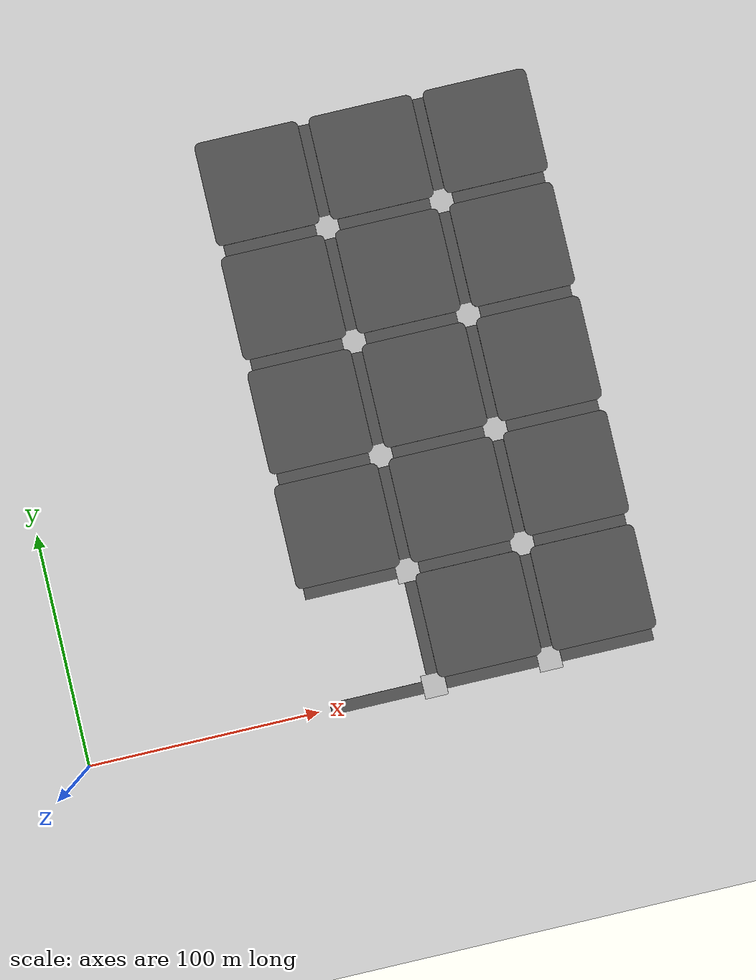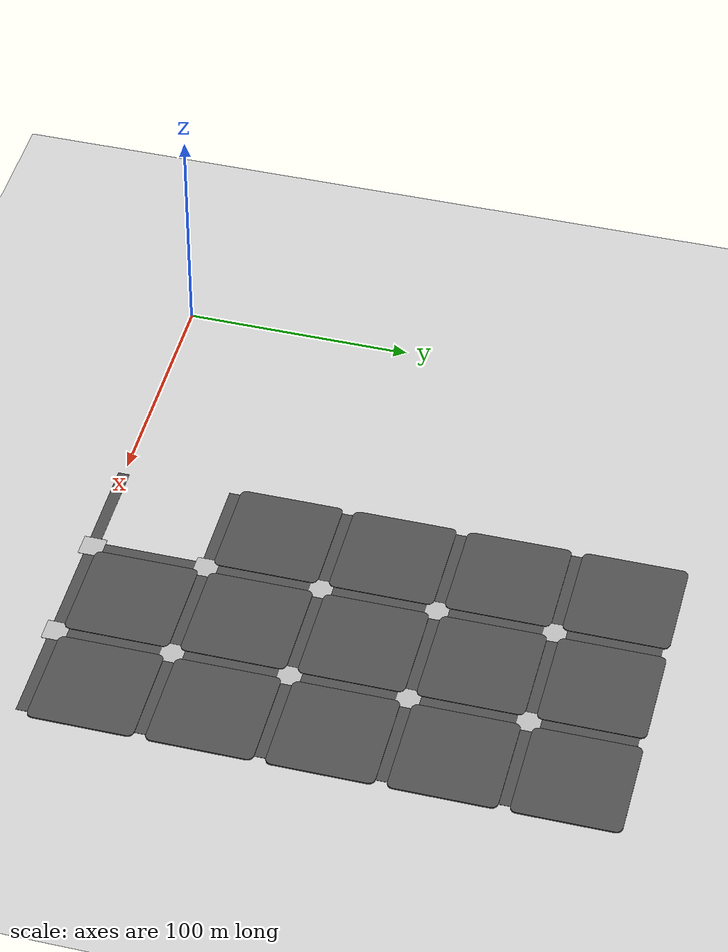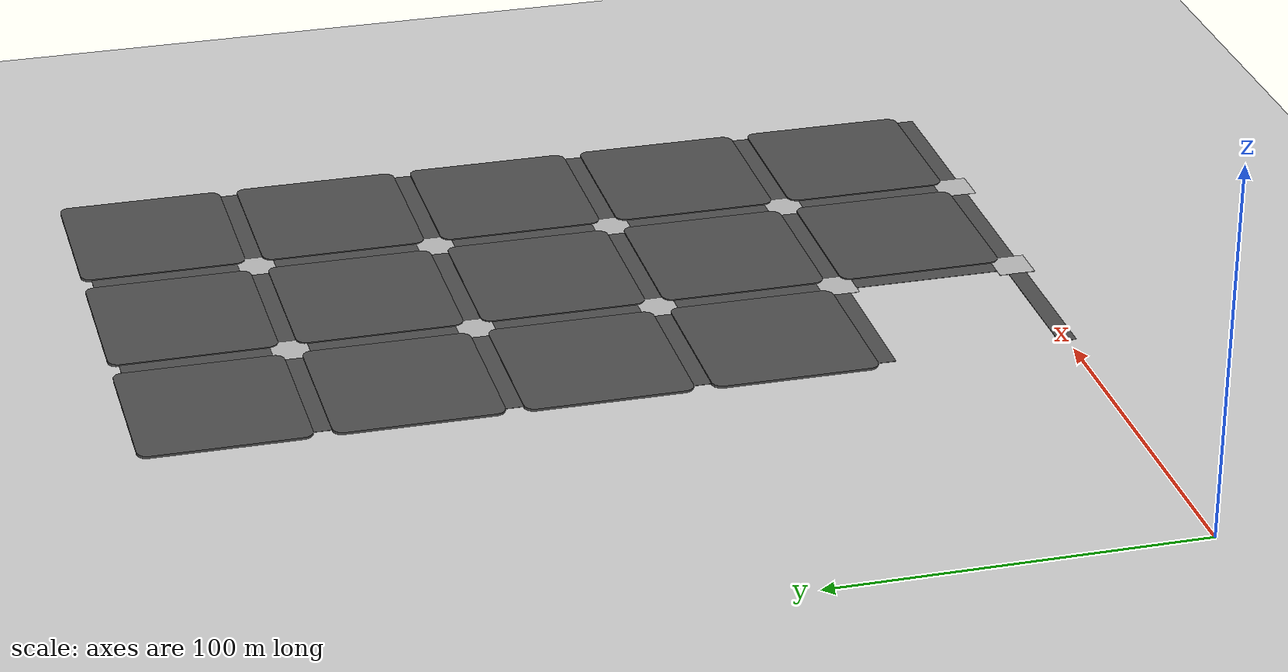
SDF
<sdf version="1.5">
 <world name="default">
  <model name="ground_plane">
   <static>1</static>
   <link name="link">
    <collision name="collision">
     <geometry><plane><normal>0 0 1</normal><size>10000 10000</size></plane></geometry>
     <surface>
      <contact><collide_bitmask>65535</collide_bitmask></contact>
      <friction><ode><mu>100</mu><mu2>50</mu2></ode></friction>
     </surface>
    </collision>
    <visual name="visual">
     <cast_shadows>0</cast_shadows>
     <geometry><plane><normal>0 0 1</normal><size>10000 10000</size></plane></geometry>
     <material>
      <script><uri>file://media/materials/scripts/gazebo.material</uri><name>Gazebo/Grey</name></script>
     </material>
    </visual>
   </link>
  </model>
  <model name="asphalt_plane_3_0">
   <pose>175 25 0 0 -0 0</pose>
   <static>1</static>
   <link name="link">
    <collision name="collision">
     <geometry>
      <mesh>
       <uri>/Users/selfcar/Desktop/Self-Driving-Comps/models/asphalt_plane/blockbevel.dae</uri>
       <scale>0.565 0.565 1</scale>
      </mesh>
     </geometry>
    </collision>
    <visual name="visual">
     <cast_shadows>0</cast_shadows>
     <geometry>
      <mesh>
       <uri>/Users/selfcar/Desktop/Self-Driving-Comps/models/asphalt_plane/blockbevel.dae</uri>
       <scale>0.565 0.565 1</scale>
      </mesh>
     </geometry>
     <material>
      <script>
       <uri>models/asphalt_plane/materials/scripts</uri>
       <uri>models/asphalt_plane/materials/textures</uri>
       <name>vrc/asphalt</name>
      </script>
     </material>
    </visual>
   </link>
  </model>
  <model name="asphalt_plane_4_0">
   <pose>225 25 0 0 -0 0</pose>
   <static>1</static>
   <link name="link">
    <collision name="collision">
     <geometry>
      <mesh>
       <uri>/Users/selfcar/Desktop/Self-Driving-Comps/models/asphalt_plane/blockbevel.dae</uri>
       <scale>0.565 0.565 1</scale>
      </mesh>
     </geometry>
    </collision>
    <visual name="visual">
     <cast_shadows>0</cast_shadows>
     <geometry>
      <mesh>
       <uri>/Users/selfcar/Desktop/Self-Driving-Comps/models/asphalt_plane/blockbevel.dae</uri>
       <scale>0.565 0.565 1</scale>
      </mesh>
     </geometry>
     <material>
      <script>
       <uri>models/asphalt_plane/materials/scripts</uri>
       <uri>models/asphalt_plane/materials/textures</uri>
       <name>vrc/asphalt</name>
      </script>
     </material>
    </visual>
   </link>
  </model>
  <model name="asphalt_plane_2_1">
   <pose>125 75 0 0 -0 0</pose>
   <static>1</static>
   <link name="link">
    <collision name="collision">
     <geometry>
      <mesh>
       <uri>/Users/selfcar/Desktop/Self-Driving-Comps/models/asphalt_plane/blockbevel.dae</uri>
       <scale>0.565 0.565 1</scale>
      </mesh>
     </geometry>
    </collision>
    <visual name="visual">
     <cast_shadows>0</cast_shadows>
     <geometry>
      <mesh>
       <uri>/Users/selfcar/Desktop/Self-Driving-Comps/models/asphalt_plane/blockbevel.dae</uri>
       <scale>0.565 0.565 1</scale>
      </mesh>
     </geometry>
     <material>
      <script>
       <uri>models/asphalt_plane/materials/scripts</uri>
       <uri>models/asphalt_plane/materials/textures</uri>
       <name>vrc/asphalt</name>
      </script>
     </material>
    </visual>
   </link>
  </model>
  <model name="asphalt_plane_3_1">
   <pose>175 75 0 0 -0 0</pose>
   <static>1</static>
   <link name="link">
    <collision name="collision">
     <geometry>
      <mesh>
       <uri>/Users/selfcar/Desktop/Self-Driving-Comps/models/asphalt_plane/blockbevel.dae</uri>
       <scale>0.565 0.565 1</scale>
      </mesh>
     </geometry>
    </collision>
    <visual name="visual">
     <cast_shadows>0</cast_shadows>
     <geometry>
      <mesh>
       <uri>/Users/selfcar/Desktop/Self-Driving-Comps/models/asphalt_plane/blockbevel.dae</uri>
       <scale>0.565 0.565 1</scale>
      </mesh>
     </geometry>
     <material>
      <script>
       <uri>models/asphalt_plane/materials/scripts</uri>
       <uri>models/asphalt_plane/materials/textures</uri>
       <name>vrc/asphalt</name>
      </script>
     </material>
    </visual>
   </link>
  </model>
  <model name="asphalt_plane_4_1">
   <pose>225 75 0 0 -0 0</pose>
   <static>1</static>
   <link name="link">
    <collision name="collision">
     <geometry>
      <mesh>
       <uri>/Users/selfcar/Desktop/Self-Driving-Comps/models/asphalt_plane/blockbevel.dae</uri>
       <scale>0.565 0.565 1</scale>
      </mesh>
     </geometry>
    </collision>
    <visual name="visual">
     <cast_shadows>0</cast_shadows>
     <geometry>
      <mesh>
       <uri>/Users/selfcar/Desktop/Self-Driving-Comps/models/asphalt_plane/blockbevel.dae</uri>
       <scale>0.565 0.565 1</scale>
      </mesh>
     </geometry>
     <material>
      <script>
       <uri>models/asphalt_plane/materials/scripts</uri>
       <uri>models/asphalt_plane/materials/textures</uri>
       <name>vrc/asphalt</name>
      </script>
     </material>
    </visual>
   </link>
  </model>
  <model name="asphalt_plane_2_2">
   <pose>125 125 0 0 -0 0</pose>
   <static>1</static>
   <link name="link">
    <collision name="collision">
     <geometry>
      <mesh>
       <uri>/Users/selfcar/Desktop/Self-Driving-Comps/models/asphalt_plane/blockbevel.dae</uri>
       <scale>0.565 0.565 1</scale>
      </mesh>
     </geometry>
    </collision>
    <visual name="visual">
     <cast_shadows>0</cast_shadows>
     <geometry>
      <mesh>
       <uri>/Users/selfcar/Desktop/Self-Driving-Comps/models/asphalt_plane/blockbevel.dae</uri>
       <scale>0.565 0.565 1</scale>
      </mesh>
     </geometry>
     <material>
      <script>
       <uri>models/asphalt_plane/materials/scripts</uri>
       <uri>models/asphalt_plane/materials/textures</uri>
       <name>vrc/asphalt</name>
      </script>
     </material>
    </visual>
   </link>
  </model>
  <model name="asphalt_plane_3_2">
   <pose>175 125 0 0 -0 0</pose>
   <static>1</static>
   <link name="link">
    <collision name="collision">
     <geometry>
      <mesh>
       <uri>/Users/selfcar/Desktop/Self-Driving-Comps/models/asphalt_plane/blockbevel.dae</uri>
       <scale>0.565 0.565 1</scale>
      </mesh>
     </geometry>
    </collision>
    <visual name="visual">
     <cast_shadows>0</cast_shadows>
     <geometry>
      <mesh>
       <uri>/Users/selfcar/Desktop/Self-Driving-Comps/models/asphalt_plane/blockbevel.dae</uri>
       <scale>0.565 0.565 1</scale>
      </mesh>
     </geometry>
     <material>
      <script>
       <uri>models/asphalt_plane/materials/scripts</uri>
       <uri>models/asphalt_plane/materials/textures</uri>
       <name>vrc/asphalt</name>
      </script>
     </material>
    </visual>
   </link>
  </model>
  <model name="asphalt_plane_4_2">
   <pose>225 125 0 0 -0 0</pose>
   <static>1</static>
   <link name="link">
    <collision name="collision">
     <geometry>
      <mesh>
       <uri>/Users/selfcar/Desktop/Self-Driving-Comps/models/asphalt_plane/blockbevel.dae</uri>
       <scale>0.565 0.565 1</scale>
      </mesh>
     </geometry>
    </collision>
    <visual name="visual">
     <cast_shadows>0</cast_shadows>
     <geometry>
      <mesh>
       <uri>/Users/selfcar/Desktop/Self-Driving-Comps/models/asphalt_plane/blockbevel.dae</uri>
       <scale>0.565 0.565 1</scale>
      </mesh>
     </geometry>
     <material>
      <script>
       <uri>models/asphalt_plane/materials/scripts</uri>
       <uri>models/asphalt_plane/materials/textures</uri>
       <name>vrc/asphalt</name>
      </script>
     </material>
    </visual>
   </link>
  </model>
  <model name="asphalt_plane_2_3">
   <pose>125 175 0 0 -0 0</pose>
   <static>1</static>
   <link name="link">
    <collision name="collision">
     <geometry>
      <mesh>
       <uri>/Users/selfcar/Desktop/Self-Driving-Comps/models/asphalt_plane/blockbevel.dae</uri>
       <scale>0.565 0.565 1</scale>
      </mesh>
     </geometry>
    </collision>
    <visual name="visual">
     <cast_shadows>0</cast_shadows>
     <geometry>
      <mesh>
       <uri>/Users/selfcar/Desktop/Self-Driving-Comps/models/asphalt_plane/blockbevel.dae</uri>
       <scale>0.565 0.565 1</scale>
      </mesh>
     </geometry>
     <material>
      <script>
       <uri>models/asphalt_plane/materials/scripts</uri>
       <uri>models/asphalt_plane/materials/textures</uri>
       <name>vrc/asphalt</name>
      </script>
     </material>
    </visual>
   </link>
  </model>
  <model name="asphalt_plane_3_3">
   <pose>175 175 0 0 -0 0</pose>
   <static>1</static>
   <link name="link">
    <collision name="collision">
     <geometry>
      <mesh>
       <uri>/Users/selfcar/Desktop/Self-Driving-Comps/models/asphalt_plane/blockbevel.dae</uri>
       <scale>0.565 0.565 1</scale>
      </mesh>
     </geometry>
    </collision>
    <visual name="visual">
     <cast_shadows>0</cast_shadows>
     <geometry>
      <mesh>
       <uri>/Users/selfcar/Desktop/Self-Driving-Comps/models/asphalt_plane/blockbevel.dae</uri>
       <scale>0.565 0.565 1</scale>
      </mesh>
     </geometry>
     <material>
      <script>
       <uri>models/asphalt_plane/materials/scripts</uri>
       <uri>models/asphalt_plane/materials/textures</uri>
       <name>vrc/asphalt</name>
      </script>
     </material>
    </visual>
   </link>
  </model>
  <model name="asphalt_plane_4_3">
   <pose>225 175 0 0 -0 0</pose>
   <static>1</static>
   <link name="link">
    <collision name="collision">
     <geometry>
      <mesh>
       <uri>/Users/selfcar/Desktop/Self-Driving-Comps/models/asphalt_plane/blockbevel.dae</uri>
       <scale>0.565 0.565 1</scale>
      </mesh>
     </geometry>
    </collision>
    <visual name="visual">
     <cast_shadows>0</cast_shadows>
     <geometry>
      <mesh>
       <uri>/Users/selfcar/Desktop/Self-Driving-Comps/models/asphalt_plane/blockbevel.dae</uri>
       <scale>0.565 0.565 1</scale>
      </mesh>
     </geometry>
     <material>
      <script>
       <uri>models/asphalt_plane/materials/scripts</uri>
       <uri>models/asphalt_plane/materials/textures</uri>
       <name>vrc/asphalt</name>
      </script>
     </material>
    </visual>
   </link>
  </model>
  <model name="asphalt_plane_2_4">
   <pose>125 225 0 0 -0 0</pose>
   <static>1</static>
   <link name="link">
    <collision name="collision">
     <geometry>
      <mesh>
       <uri>/Users/selfcar/Desktop/Self-Driving-Comps/models/asphalt_plane/blockbevel.dae</uri>
       <scale>0.565 0.565 1</scale>
      </mesh>
     </geometry>
    </collision>
    <visual name="visual">
     <cast_shadows>0</cast_shadows>
     <geometry>
      <mesh>
       <uri>/Users/selfcar/Desktop/Self-Driving-Comps/models/asphalt_plane/blockbevel.dae</uri>
       <scale>0.565 0.565 1</scale>
      </mesh>
     </geometry>
     <material>
      <script>
       <uri>models/asphalt_plane/materials/scripts</uri>
       <uri>models/asphalt_plane/materials/textures</uri>
       <name>vrc/asphalt</name>
      </script>
     </material>
    </visual>
   </link>
  </model>
  <model name="asphalt_plane_3_4">
   <pose>175 225 0 0 -0 0</pose>
   <static>1</static>
   <link name="link">
    <collision name="collision">
     <geometry>
      <mesh>
       <uri>/Users/selfcar/Desktop/Self-Driving-Comps/models/asphalt_plane/blockbevel.dae</uri>
       <scale>0.565 0.565 1</scale>
      </mesh>
     </geometry>
    </collision>
    <visual name="visual">
     <cast_shadows>0</cast_shadows>
     <geometry>
      <mesh>
       <uri>/Users/selfcar/Desktop/Self-Driving-Comps/models/asphalt_plane/blockbevel.dae</uri>
       <scale>0.565 0.565 1</scale>
      </mesh>
     </geometry>
     <material>
      <script>
       <uri>models/asphalt_plane/materials/scripts</uri>
       <uri>models/asphalt_plane/materials/textures</uri>
       <name>vrc/asphalt</name>
      </script>
     </material>
    </visual>
   </link>
  </model>
  <model name="asphalt_plane_4_4">
   <pose>225 225 0 0 -0 0</pose>
   <static>1</static>
   <link name="link">
    <collision name="collision">
     <geometry>
      <mesh>
       <uri>/Users/selfcar/Desktop/Self-Driving-Comps/models/asphalt_plane/blockbevel.dae</uri>
       <scale>0.565 0.565 1</scale>
      </mesh>
     </geometry>
    </collision>
    <visual name="visual">
     <cast_shadows>0</cast_shadows>
     <geometry>
      <mesh>
       <uri>/Users/selfcar/Desktop/Self-Driving-Comps/models/asphalt_plane/blockbevel.dae</uri>
       <scale>0.565 0.565 1</scale>
      </mesh>
     </geometry>
     <material>
      <script>
       <uri>models/asphalt_plane/materials/scripts</uri>
       <uri>models/asphalt_plane/materials/textures</uri>
       <name>vrc/asphalt</name>
      </script>
     </material>
    </visual>
   </link>
  </model>
  <model name="road_2_2_0">
   <pose>125 0 0 0 -0 0</pose>
   <static>1</static>
   <link name="link">
    <collision name="collision"><geometry><box><size>40 5 0.1</size></box></geometry></collision>
    <visual name="visual">
     <cast_shadows>0</cast_shadows>
     <geometry><box><size>40 5 0.1</size></box></geometry>
     <material>
      <script>
       <uri>model://comps_road/materials/scripts</uri>
       <uri>model://comps_road/materials/textures</uri>
       <name>comps_road</name>
      </script>
     </material>
    </visual>
   </link>
  </model>
  <model name="road_1_3_0">
   <pose>150 25 0 0 -0 1.5707</pose>
   <static>1</static>
   <link name="link">
    <collision name="collision"><geometry><box><size>40 5 0.1</size></box></geometry></collision>
    <visual name="visual">
     <cast_shadows>0</cast_shadows>
     <geometry><box><size>40 5 0.1</size></box></geometry>
     <material>
      <script>
       <uri>model://comps_road/materials/scripts</uri>
       <uri>model://comps_road/materials/textures</uri>
       <name>comps_road</name>
      </script>
     </material>
    </visual>
   </link>
  </model>
  <model name="road_2_3_0">
   <pose>175 0 0 0 -0 0</pose>
   <static>1</static>
   <link name="link">
    <collision name="collision"><geometry><box><size>40 5 0.1</size></box></geometry></collision>
    <visual name="visual">
     <cast_shadows>0</cast_shadows>
     <geometry><box><size>40 5 0.1</size></box></geometry>
     <material>
      <script>
       <uri>model://comps_road/materials/scripts</uri>
       <uri>model://comps_road/materials/textures</uri>
       <name>comps_road</name>
      </script>
     </material>
    </visual>
   </link>
  </model>
  <model name="intersection_3_0">
   <pose>150 0 0 0 -0 0</pose>
   <static>1</static>
   <link name="link">
    <collision name="collision"><geometry><box><size>10 10 0.1</size></box></geometry></collision>
    <visual name="visual">
     <cast_shadows>0</cast_shadows>
     <geometry><box><size>10 10 0.1</size></box></geometry>
     <material>
      <script>
       <uri>model://intersection/materials/scripts</uri>
       <uri>model://intersection/materials/textures</uri>
       <name>intersection</name>
      </script>
     </material>
    </visual>
   </link>
  </model>
  <model name="road_1_4_0">
   <pose>200 25 0 0 -0 1.5707</pose>
   <static>1</static>
   <link name="link">
    <collision name="collision"><geometry><box><size>40 5 0.1</size></box></geometry></collision>
    <visual name="visual">
     <cast_shadows>0</cast_shadows>
     <geometry><box><size>40 5 0.1</size></box></geometry>
     <material>
      <script>
       <uri>model://comps_road/materials/scripts</uri>
       <uri>model://comps_road/materials/textures</uri>
       <name>comps_road</name>
      </script>
     </material>
    </visual>
   </link>
  </model>
  <model name="road_2_4_0">
   <pose>225 0 0 0 -0 0</pose>
   <static>1</static>
   <link name="link">
    <collision name="collision"><geometry><box><size>40 5 0.1</size></box></geometry></collision>
    <visual name="visual">
     <cast_shadows>0</cast_shadows>
     <geometry><box><size>40 5 0.1</size></box></geometry>
     <material>
      <script>
       <uri>model://comps_road/materials/scripts</uri>
       <uri>model://comps_road/materials/textures</uri>
       <name>comps_road</name>
      </script>
     </material>
    </visual>
   </link>
  </model>
  <model name="intersection_4_0">
   <pose>200 0 0 0 -0 0</pose>
   <static>1</static>
   <link name="link">
    <collision name="collision"><geometry><box><size>10 10 0.1</size></box></geometry></collision>
    <visual name="visual">
     <cast_shadows>0</cast_shadows>
     <geometry><box><size>10 10 0.1</size></box></geometry>
     <material>
      <script>
       <uri>model://intersection/materials/scripts</uri>
       <uri>model://intersection/materials/textures</uri>
       <name>intersection</name>
      </script>
     </material>
    </visual>
   </link>
  </model>
  <model name="road_2_2_1">
   <pose>125 50 0 0 -0 0</pose>
   <static>1</static>
   <link name="link">
    <collision name="collision"><geometry><box><size>40 5 0.1</size></box></geometry></collision>
    <visual name="visual">
     <cast_shadows>0</cast_shadows>
     <geometry><box><size>40 5 0.1</size></box></geometry>
     <material>
      <script>
       <uri>model://comps_road/materials/scripts</uri>
       <uri>model://comps_road/materials/textures</uri>
       <name>comps_road</name>
      </script>
     </material>
    </visual>
   </link>
  </model>
  <model name="road_1_3_1">
   <pose>150 75 0 0 -0 1.5707</pose>
   <static>1</static>
   <link name="link">
    <collision name="collision"><geometry><box><size>40 5 0.1</size></box></geometry></collision>
    <visual name="visual">
     <cast_shadows>0</cast_shadows>
     <geometry><box><size>40 5 0.1</size></box></geometry>
     <material>
      <script>
       <uri>model://comps_road/materials/scripts</uri>
       <uri>model://comps_road/materials/textures</uri>
       <name>comps_road</name>
      </script>
     </material>
    </visual>
   </link>
  </model>
  <model name="road_2_3_1">
   <pose>175 50 0 0 -0 0</pose>
   <static>1</static>
   <link name="link">
    <collision name="collision"><geometry><box><size>40 5 0.1</size></box></geometry></collision>
    <visual name="visual">
     <cast_shadows>0</cast_shadows>
     <geometry><box><size>40 5 0.1</size></box></geometry>
     <material>
      <script>
       <uri>model://comps_road/materials/scripts</uri>
       <uri>model://comps_road/materials/textures</uri>
       <name>comps_road</name>
      </script>
     </material>
    </visual>
   </link>
  </model>
  <model name="intersection_3_1">
   <pose>150 50 0 0 -0 0</pose>
   <static>1</static>
   <link name="link">
    <collision name="collision"><geometry><box><size>10 10 0.1</size></box></geometry></collision>
    <visual name="visual">
     <cast_shadows>0</cast_shadows>
     <geometry><box><size>10 10 0.1</size></box></geometry>
     <material>
      <script>
       <uri>model://intersection/materials/scripts</uri>
       <uri>model://intersection/materials/textures</uri>
       <name>intersection</name>
      </script>
     </material>
    </visual>
   </link>
  </model>
  <model name="road_1_4_1">
   <pose>200 75 0 0 -0 1.5707</pose>
   <static>1</static>
   <link name="link">
    <collision name="collision"><geometry><box><size>40 5 0.1</size></box></geometry></collision>
    <visual name="visual">
     <cast_shadows>0</cast_shadows>
     <geometry><box><size>40 5 0.1</size></box></geometry>
     <material>
      <script>
       <uri>model://comps_road/materials/scripts</uri>
       <uri>model://comps_road/materials/textures</uri>
       <name>comps_road</name>
      </script>
     </material>
    </visual>
   </link>
  </model>
  <model name="road_2_4_1">
   <pose>225 50 0 0 -0 0</pose>
   <static>1</static>
   <link name="link">
    <collision name="collision"><geometry><box><size>40 5 0.1</size></box></geometry></collision>
    <visual name="visual">
     <cast_shadows>0</cast_shadows>
     <geometry><box><size>40 5 0.1</size></box></geometry>
     <material>
      <script>
       <uri>model://comps_road/materials/scripts</uri>
       <uri>model://comps_road/materials/textures</uri>
       <name>comps_road</name>
      </script>
     </material>
    </visual>
   </link>
  </model>
  <model name="intersection_4_1">
   <pose>200 50 0 0 -0 0</pose>
   <static>1</static>
   <link name="link">
    <collision name="collision"><geometry><box><size>10 10 0.1</size></box></geometry></collision>
    <visual name="visual">
     <cast_shadows>0</cast_shadows>
     <geometry><box><size>10 10 0.1</size></box></geometry>
     <material>
      <script>
       <uri>model://intersection/materials/scripts</uri>
       <uri>model://intersection/materials/textures</uri>
       <name>intersection</name>
      </script>
     </material>
    </visual>
   </link>
  </model>
  <model name="road_2_2_2">
   <pose>125 100 0 0 -0 0</pose>
   <static>1</static>
   <link name="link">
    <collision name="collision"><geometry><box><size>40 5 0.1</size></box></geometry></collision>
    <visual name="visual">
     <cast_shadows>0</cast_shadows>
     <geometry><box><size>40 5 0.1</size></box></geometry>
     <material>
      <script>
       <uri>model://comps_road/materials/scripts</uri>
       <uri>model://comps_road/materials/textures</uri>
       <name>comps_road</name>
      </script>
     </material>
    </visual>
   </link>
  </model>
  <model name="road_1_3_2">
   <pose>150 125 0 0 -0 1.5707</pose>
   <static>1</static>
   <link name="link">
    <collision name="collision"><geometry><box><size>40 5 0.1</size></box></geometry></collision>
    <visual name="visual">
     <cast_shadows>0</cast_shadows>
     <geometry><box><size>40 5 0.1</size></box></geometry>
     <material>
      <script>
       <uri>model://comps_road/materials/scripts</uri>
       <uri>model://comps_road/materials/textures</uri>
       <name>comps_road</name>
      </script>
     </material>
    </visual>
   </link>
  </model>
  <model name="road_2_3_2">
   <pose>175 100 0 0 -0 0</pose>
   <static>1</static>
   <link name="link">
    <collision name="collision"><geometry><box><size>40 5 0.1</size></box></geometry></collision>
    <visual name="visual">
     <cast_shadows>0</cast_shadows>
     <geometry><box><size>40 5 0.1</size></box></geometry>
     <material>
      <script>
       <uri>model://comps_road/materials/scripts</uri>
       <uri>model://comps_road/materials/textures</uri>
       <name>comps_road</name>
      </script>
     </material>
    </visual>
   </link>
  </model>
  <model name="intersection_3_2">
   <pose>150 100 0 0 -0 0</pose>
   <static>1</static>
   <link name="link">
    <collision name="collision"><geometry><box><size>10 10 0.1</size></box></geometry></collision>
    <visual name="visual">
     <cast_shadows>0</cast_shadows>
     <geometry><box><size>10 10 0.1</size></box></geometry>
     <material>
      <script>
       <uri>model://intersection/materials/scripts</uri>
       <uri>model://intersection/materials/textures</uri>
       <name>intersection</name>
      </script>
     </material>
    </visual>
   </link>
  </model>
  <model name="road_1_4_2">
   <pose>200 125 0 0 -0 1.5707</pose>
   <static>1</static>
   <link name="link">
    <collision name="collision"><geometry><box><size>40 5 0.1</size></box></geometry></collision>
    <visual name="visual">
     <cast_shadows>0</cast_shadows>
     <geometry><box><size>40 5 0.1</size></box></geometry>
     <material>
      <script>
       <uri>model://comps_road/materials/scripts</uri>
       <uri>model://comps_road/materials/textures</uri>
       <name>comps_road</name>
      </script>
     </material>
    </visual>
   </link>
  </model>
  <model name="road_2_4_2">
   <pose>225 100 0 0 -0 0</pose>
   <static>1</static>
   <link name="link">
    <collision name="collision"><geometry><box><size>40 5 0.1</size></box></geometry></collision>
    <visual name="visual">
     <cast_shadows>0</cast_shadows>
     <geometry><box><size>40 5 0.1</size></box></geometry>
     <material>
      <script>
       <uri>model://comps_road/materials/scripts</uri>
       <uri>model://comps_road/materials/textures</uri>
       <name>comps_road</name>
      </script>
     </material>
    </visual>
   </link>
  </model>
  <model name="intersection_4_2">
   <pose>200 100 0 0 -0 0</pose>
   <static>1</static>
   <link name="link">
    <collision name="collision"><geometry><box><size>10 10 0.1</size></box></geometry></collision>
    <visual name="visual">
     <cast_shadows>0</cast_shadows>
     <geometry><box><size>10 10 0.1</size></box></geometry>
     <material>
      <script>
       <uri>model://intersection/materials/scripts</uri>
       <uri>model://intersection/materials/textures</uri>
       <name>intersection</name>
      </script>
     </material>
    </visual>
   </link>
  </model>
  <model name="road_2_2_3">
   <pose>125 150 0 0 -0 0</pose>
   <static>1</static>
   <link name="link">
    <collision name="collision"><geometry><box><size>40 5 0.1</size></box></geometry></collision>
    <visual name="visual">
     <cast_shadows>0</cast_shadows>
     <geometry><box><size>40 5 0.1</size></box></geometry>
     <material>
      <script>
       <uri>model://comps_road/materials/scripts</uri>
       <uri>model://comps_road/materials/textures</uri>
       <name>comps_road</name>
      </script>
     </material>
    </visual>
   </link>
  </model>
  <model name="road_1_3_3">
   <pose>150 175 0 0 -0 1.5707</pose>
   <static>1</static>
   <link name="link">
    <collision name="collision"><geometry><box><size>40 5 0.1</size></box></geometry></collision>
    <visual name="visual">
     <cast_shadows>0</cast_shadows>
     <geometry><box><size>40 5 0.1</size></box></geometry>
     <material>
      <script>
       <uri>model://comps_road/materials/scripts</uri>
       <uri>model://comps_road/materials/textures</uri>
       <name>comps_road</name>
      </script>
     </material>
    </visual>
   </link>
  </model>
  <model name="road_2_3_3">
   <pose>175 150 0 0 -0 0</pose>
   <static>1</static>
   <link name="link">
    <collision name="collision"><geometry><box><size>40 5 0.1</size></box></geometry></collision>
    <visual name="visual">
     <cast_shadows>0</cast_shadows>
     <geometry><box><size>40 5 0.1</size></box></geometry>
     <material>
      <script>
       <uri>model://comps_road/materials/scripts</uri>
       <uri>model://comps_road/materials/textures</uri>
       <name>comps_road</name>
      </script>
     </material>
    </visual>
   </link>
  </model>
  <model name="intersection_3_3">
   <pose>150 150 0 0 -0 0</pose>
   <static>1</static>
   <link name="link">
    <collision name="collision"><geometry><box><size>10 10 0.1</size></box></geometry></collision>
    <visual name="visual">
     <cast_shadows>0</cast_shadows>
     <geometry><box><size>10 10 0.1</size></box></geometry>
     <material>
      <script>
       <uri>model://intersection/materials/scripts</uri>
       <uri>model://intersection/materials/textures</uri>
       <name>intersection</name>
      </script>
     </material>
    </visual>
   </link>
  </model>
  <model name="road_1_4_3">
   <pose>200 175 0 0 -0 1.5707</pose>
   <static>1</static>
   <link name="link">
    <collision name="collision"><geometry><box><size>40 5 0.1</size></box></geometry></collision>
    <visual name="visual">
     <cast_shadows>0</cast_shadows>
     <geometry><box><size>40 5 0.1</size></box></geometry>
     <material>
      <script>
       <uri>model://comps_road/materials/scripts</uri>
       <uri>model://comps_road/materials/textures</uri>
       <name>comps_road</name>
      </script>
     </material>
    </visual>
   </link>
  </model>
  <model name="road_2_4_3">
   <pose>225 150 0 0 -0 0</pose>
   <static>1</static>
   <link name="link">
    <collision name="collision"><geometry><box><size>40 5 0.1</size></box></geometry></collision>
    <visual name="visual">
     <cast_shadows>0</cast_shadows>
     <geometry><box><size>40 5 0.1</size></box></geometry>
     <material>
      <script>
       <uri>model://comps_road/materials/scripts</uri>
       <uri>model://comps_road/materials/textures</uri>
       <name>comps_road</name>
      </script>
     </material>
    </visual>
   </link>
  </model>
  <model name="intersection_4_3">
   <pose>200 150 0 0 -0 0</pose>
   <static>1</static>
   <link name="link">
    <collision name="collision"><geometry><box><size>10 10 0.1</size></box></geometry></collision>
    <visual name="visual">
     <cast_shadows>0</cast_shadows>
     <geometry><box><size>10 10 0.1</size></box></geometry>
     <material>
      <script>
       <uri>model://intersection/materials/scripts</uri>
       <uri>model://intersection/materials/textures</uri>
       <name>intersection</name>
      </script>
     </material>
    </visual>
   </link>
  </model>
  <model name="road_2_2_4">
   <pose>125 200 0 0 -0 0</pose>
   <static>1</static>
   <link name="link">
    <collision name="collision"><geometry><box><size>40 5 0.1</size></box></geometry></collision>
    <visual name="visual">
     <cast_shadows>0</cast_shadows>
     <geometry><box><size>40 5 0.1</size></box></geometry>
     <material>
      <script>
       <uri>model://comps_road/materials/scripts</uri>
       <uri>model://comps_road/materials/textures</uri>
       <name>comps_road</name>
      </script>
     </material>
    </visual>
   </link>
  </model>
  <model name="road_1_3_4">
   <pose>150 225 0 0 -0 1.5707</pose>
   <static>1</static>
   <link name="link">
    <collision name="collision"><geometry><box><size>40 5 0.1</size></box></geometry></collision>
    <visual name="visual">
     <cast_shadows>0</cast_shadows>
     <geometry><box><size>40 5 0.1</size></box></geometry>
     <material>
      <script>
       <uri>model://comps_road/materials/scripts</uri>
       <uri>model://comps_road/materials/textures</uri>
       <name>comps_road</name>
      </script>
     </material>
    </visual>
   </link>
  </model>
  <model name="road_2_3_4">
   <pose>175 200 0 0 -0 0</pose>
   <static>1</static>
   <link name="link">
    <collision name="collision"><geometry><box><size>40 5 0.1</size></box></geometry></collision>
    <visual name="visual">
     <cast_shadows>0</cast_shadows>
     <geometry><box><size>40 5 0.1</size></box></geometry>
     <material>
      <script>
       <uri>model://comps_road/materials/scripts</uri>
       <uri>model://comps_road/materials/textures</uri>
       <name>comps_road</name>
      </script>
     </material>
    </visual>
   </link>
  </model>
  <model name="intersection_3_4">
   <pose>150 200 0 0 -0 0</pose>
   <static>1</static>
   <link name="link">
    <collision name="collision"><geometry><box><size>10 10 0.1</size></box></geometry></collision>
    <visual name="visual">
     <cast_shadows>0</cast_shadows>
     <geometry><box><size>10 10 0.1</size></box></geometry>
     <material>
      <script>
       <uri>model://intersection/materials/scripts</uri>
       <uri>model://intersection/materials/textures</uri>
       <name>intersection</name>
      </script>
     </material>
    </visual>
   </link>
  </model>
  <model name="road_1_4_4">
   <pose>200 225 0 0 -0 1.5707</pose>
   <static>1</static>
   <link name="link">
    <collision name="collision"><geometry><box><size>40 5 0.1</size></box></geometry></collision>
    <visual name="visual">
     <cast_shadows>0</cast_shadows>
     <geometry><box><size>40 5 0.1</size></box></geometry>
     <material>
      <script>
       <uri>model://comps_road/materials/scripts</uri>
       <uri>model://comps_road/materials/textures</uri>
       <name>comps_road</name>
      </script>
     </material>
    </visual>
   </link>
  </model>
  <model name="road_2_4_4">
   <pose>225 200 0 0 -0 0</pose>
   <static>1</static>
   <link name="link">
    <collision name="collision"><geometry><box><size>40 5 0.1</size></box></geometry></collision>
    <visual name="visual">
     <cast_shadows>0</cast_shadows>
     <geometry><box><size>40 5 0.1</size></box></geometry>
     <material>
      <script>
       <uri>model://comps_road/materials/scripts</uri>
       <uri>model://comps_road/materials/textures</uri>
       <name>comps_road</name>
      </script>
     </material>
    </visual>
   </link>
  </model>
  <model name="intersection_4_4">
   <pose>200 200 0 0 -0 0</pose>
   <static>1</static>
   <link name="link">
    <collision name="collision"><geometry><box><size>10 10 0.1</size></box></geometry></collision>
    <visual name="visual">
     <cast_shadows>0</cast_shadows>
     <geometry><box><size>10 10 0.1</size></box></geometry>
     <material>
      <script>
       <uri>model://intersection/materials/scripts</uri>
       <uri>model://intersection/materials/textures</uri>
       <name>intersection</name>
      </script>
     </material>
    </visual>
   </link>
  </model>
 </world>
</sdf>
